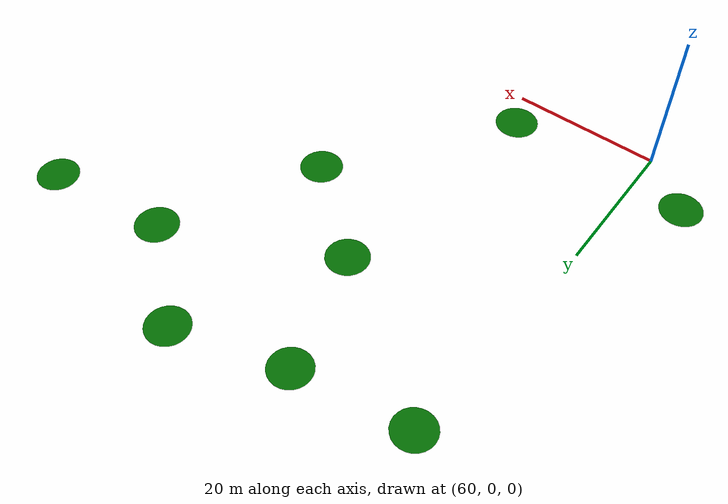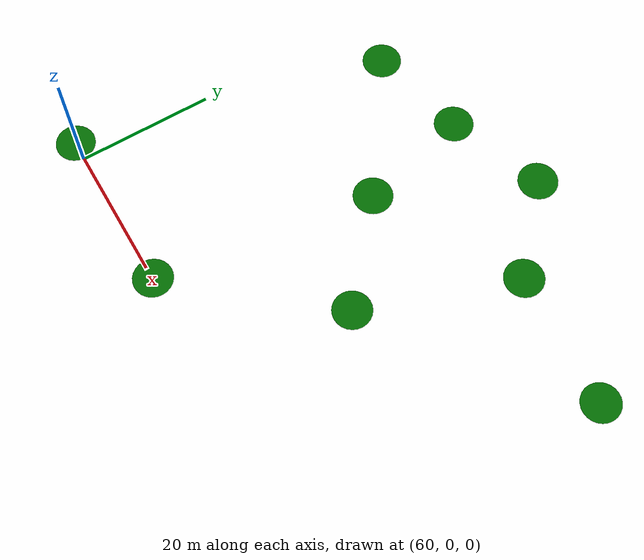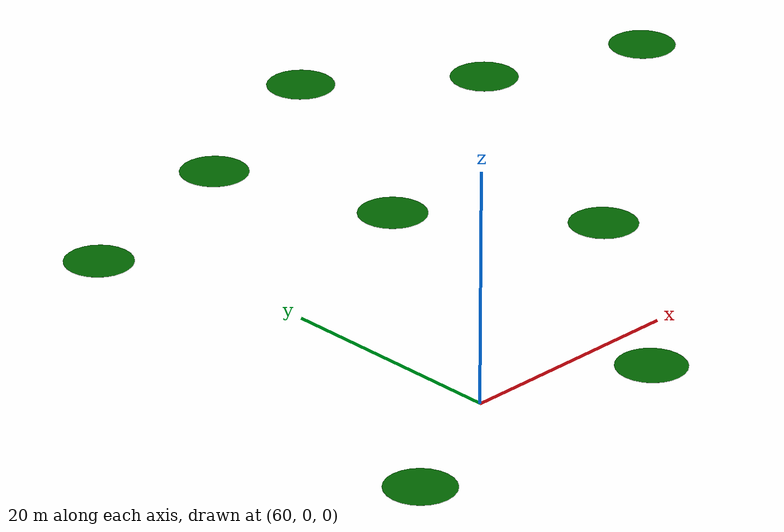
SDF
<sdf version="1.6">
 <world name="default">
  <model name="ground_plane">
   <static>1</static>
   <link name="link">
    <collision name="collision">
     <geometry><plane><normal>0 0 1</normal><size>100 100</size></plane></geometry>
     <surface><friction><ode><mu>100</mu><mu2>50</mu2></ode></friction></surface>
    </collision>
    <visual name="visual">
     <cast_shadows>0</cast_shadows>
     <geometry><plane><normal>0 0 1</normal><size>100 100</size></plane></geometry>
     <material>
      <script><uri>file://media/materials/scripts/gazebo.material</uri><name>Gazebo/Grey</name></script>
     </material>
    </visual>
   </link>
  </model>
  <model name="M16APM_point">
   <link name="link">
    <inertial>
     <mass>1</mass>
     <inertia><ixx>0.145833</ixx><ixy>0</ixy><ixz>0</ixz><iyy>0.145833</iyy><iyz>0</iyz><izz>0.125</izz></inertia>
    </inertial>
    <gravity>0</gravity>
    <visual name="ModelPreview_1::link::visual_1">
     <geometry><cylinder><radius>3</radius><length>0.01</length></cylinder></geometry>
     <material>
      <script><name>Gazebo/Grey</name><uri>file://media/materials/scripts/gazebo.material</uri></script>
      <ambient>0 0.4 0 0</ambient>
      <diffuse>0 0.4 0 0</diffuse>
      <specular>0 0.41 0 0</specular>
      <emissive>0 0.4 0 0</emissive>
      <shader type="vertex"><normal_map>__default__</normal_map></shader>
     </material>
    </visual>
    <visual name="visual">
     <geometry><cylinder><radius>3</radius><length>0.005</length></cylinder></geometry>
     <material>
      <script><name>Gazebo/Grey</name><uri>file://media/materials/scripts/gazebo.material</uri></script>
      <ambient>0 0.4 0 0</ambient>
      <diffuse>0 0.4 0 0</diffuse>
      <specular>0 0.41 0 0</specular>
      <emissive>0 0.4 0 0</emissive>
      <shader type="vertex"><normal_map>__default__</normal_map></shader>
     </material>
    </visual>
   </link>
   <static>0</static>
   <pose>54 0.5 -5.2279 0 -0 0</pose>
  </model>
  <model name="M16APM_point_clone_clone_clone">
   <link name="link">
    <inertial>
     <mass>1</mass>
     <inertia><ixx>0.145833</ixx><ixy>0</ixy><ixz>0</ixz><iyy>0.145833</iyy><iyz>0</iyz><izz>0.125</izz></inertia>
    </inertial>
    <gravity>0</gravity>
    <visual name="ModelPreview_1::link::visual_1">
     <geometry><cylinder><radius>3</radius><length>0.01</length></cylinder></geometry>
     <material>
      <script><name>Gazebo/Grey</name><uri>file://media/materials/scripts/gazebo.material</uri></script>
      <ambient>0 0.4 0 0</ambient>
      <diffuse>0 0.4 0 0</diffuse>
      <specular>0 0.41 0 0</specular>
      <emissive>0 0.4 0 0</emissive>
      <shader type="vertex"><normal_map>__default__</normal_map></shader>
     </material>
    </visual>
    <visual name="visual">
     <geometry><cylinder><radius>3</radius><length>0.005</length></cylinder></geometry>
     <material>
      <script><name>Gazebo/Grey</name><uri>file://media/materials/scripts/gazebo.material</uri></script>
      <ambient>0 0.4 0 0</ambient>
      <diffuse>0 0.4 0 0</diffuse>
      <specular>0 0.41 0 0</specular>
      <emissive>0 0.4 0 0</emissive>
      <shader type="vertex"><normal_map>__default__</normal_map></shader>
     </material>
    </visual>
   </link>
   <static>0</static>
   <pose>127 46 -6.5373 0 -0 0</pose>
  </model>
  <model name="M16APM_point_clone_0_clone">
   <link name="link">
    <inertial>
     <mass>1</mass>
     <inertia><ixx>0.145833</ixx><ixy>0</ixy><ixz>0</ixz><iyy>0.145833</iyy><iyz>0</iyz><izz>0.125</izz></inertia>
    </inertial>
    <gravity>0</gravity>
    <visual name="ModelPreview_1::link::visual_1">
     <geometry><cylinder><radius>3</radius><length>0.01</length></cylinder></geometry>
     <material>
      <script><name>Gazebo/Grey</name><uri>file://media/materials/scripts/gazebo.material</uri></script>
      <ambient>0 0.4 0 0</ambient>
      <diffuse>0 0.4 0 0</diffuse>
      <specular>0 0.41 0 0</specular>
      <emissive>0 0.4 0 0</emissive>
      <shader type="vertex"><normal_map>__default__</normal_map></shader>
     </material>
    </visual>
    <visual name="visual">
     <geometry><cylinder><radius>3</radius><length>0.005</length></cylinder></geometry>
     <material>
      <script><name>Gazebo/Grey</name><uri>file://media/materials/scripts/gazebo.material</uri></script>
      <ambient>0 0.4 0 0</ambient>
      <diffuse>0 0.4 0 0</diffuse>
      <specular>0 0.41 0 0</specular>
      <emissive>0 0.4 0 0</emissive>
      <shader type="vertex"><normal_map>__default__</normal_map></shader>
     </material>
    </visual>
   </link>
   <static>0</static>
   <pose>107 46 -3.071 0 -0 0</pose>
  </model>
  <model name="M16APM_point_clone_0_clone_clone_clone">
   <link name="link">
    <inertial>
     <mass>1</mass>
     <inertia><ixx>0.145833</ixx><ixy>0</ixy><ixz>0</ixz><iyy>0.145833</iyy><iyz>0</iyz><izz>0.125</izz></inertia>
    </inertial>
    <gravity>0</gravity>
    <visual name="ModelPreview_1::link::visual_1">
     <geometry><cylinder><radius>3</radius><length>0.01</length></cylinder></geometry>
     <material>
      <script><name>Gazebo/Grey</name><uri>file://media/materials/scripts/gazebo.material</uri></script>
      <ambient>0 0.4 0 0</ambient>
      <diffuse>0 0.4 0 0</diffuse>
      <specular>0 0.41 0 0</specular>
      <emissive>0 0.4 0 0</emissive>
      <shader type="vertex"><normal_map>__default__</normal_map></shader>
     </material>
    </visual>
    <visual name="visual">
     <geometry><cylinder><radius>3</radius><length>0.005</length></cylinder></geometry>
     <material>
      <script><name>Gazebo/Grey</name><uri>file://media/materials/scripts/gazebo.material</uri></script>
      <ambient>0 0.4 0 0</ambient>
      <diffuse>0 0.4 0 0</diffuse>
      <specular>0 0.41 0 0</specular>
      <emissive>0 0.4 0 0</emissive>
      <shader type="vertex"><normal_map>__default__</normal_map></shader>
     </material>
    </visual>
   </link>
   <static>0</static>
   <pose>64 48.5 -6.6215 0 -0 0</pose>
  </model>
  <model name="M16APM_point_clone_0_clone_clone_clone_clone_clone">
   <link name="link">
    <inertial>
     <mass>1</mass>
     <inertia><ixx>0.145833</ixx><ixy>0</ixy><ixz>0</ixz><iyy>0.145833</iyy><iyz>0</iyz><izz>0.125</izz></inertia>
    </inertial>
    <gravity>0</gravity>
    <visual name="ModelPreview_1::link::visual_1">
     <geometry><cylinder><radius>3</radius><length>0.01</length></cylinder></geometry>
     <material>
      <script><name>Gazebo/Grey</name><uri>file://media/materials/scripts/gazebo.material</uri></script>
      <ambient>0 0.4 0 0</ambient>
      <diffuse>0 0.4 0 0</diffuse>
      <specular>0 0.41 0 0</specular>
      <emissive>0 0.4 0 0</emissive>
      <shader type="vertex"><normal_map>__default__</normal_map></shader>
     </material>
    </visual>
    <visual name="visual">
     <geometry><cylinder><radius>3</radius><length>0.005</length></cylinder></geometry>
     <material>
      <script><name>Gazebo/Grey</name><uri>file://media/materials/scripts/gazebo.material</uri></script>
      <ambient>0 0.4 0 0</ambient>
      <diffuse>0 0.4 0 0</diffuse>
      <specular>0 0.41 0 0</specular>
      <emissive>0 0.4 0 0</emissive>
      <shader type="vertex"><normal_map>__default__</normal_map></shader>
     </material>
    </visual>
   </link>
   <static>0</static>
   <pose>84.5 34.5 -4.3199 0 -0 0</pose>
  </model>
  <model name="M16APM_point_clone_0_clone_clone_clone_clone_clone_clone_clone_0">
   <link name="link">
    <inertial>
     <mass>1</mass>
     <inertia><ixx>0.145833</ixx><ixy>0</ixy><ixz>0</ixz><iyy>0.145833</iyy><iyz>0</iyz><izz>0.125</izz></inertia>
    </inertial>
    <gravity>0</gravity>
    <visual name="ModelPreview_1::link::visual_1">
     <geometry><cylinder><radius>3</radius><length>0.01</length></cylinder></geometry>
     <material>
      <script><name>Gazebo/Grey</name><uri>file://media/materials/scripts/gazebo.material</uri></script>
      <ambient>0 0.4 0 0</ambient>
      <diffuse>0 0.4 0 0</diffuse>
      <specular>0 0.41 0 0</specular>
      <emissive>0 0.4 0 0</emissive>
      <shader type="vertex"><normal_map>__default__</normal_map></shader>
     </material>
    </visual>
    <visual name="visual">
     <geometry><cylinder><radius>3</radius><length>0.005</length></cylinder></geometry>
     <material>
      <script><name>Gazebo/Grey</name><uri>file://media/materials/scripts/gazebo.material</uri></script>
      <ambient>0 0.4 0 0</ambient>
      <diffuse>0 0.4 0 0</diffuse>
      <specular>0 0.41 0 0</specular>
      <emissive>0 0.4 0 0</emissive>
      <shader type="vertex"><normal_map>__default__</normal_map></shader>
     </material>
    </visual>
   </link>
   <static>0</static>
   <pose>95 56.5 -3.4083 0 -0 0</pose>
  </model>
  <model name="M16APM_point_clone_0_clone_clone_clone_clone_clone_clone_clone_3">
   <link name="link">
    <inertial>
     <mass>1</mass>
     <inertia><ixx>0.145833</ixx><ixy>0</ixy><ixz>0</ixz><iyy>0.145833</iyy><iyz>0</iyz><izz>0.125</izz></inertia>
    </inertial>
    <gravity>0</gravity>
    <visual name="ModelPreview_1::link::visual_1">
     <geometry><cylinder><radius>3</radius><length>0.01</length></cylinder></geometry>
     <material>
      <script><name>Gazebo/Grey</name><uri>file://media/materials/scripts/gazebo.material</uri></script>
      <ambient>0 0.4 0 0</ambient>
      <diffuse>0 0.4 0 0</diffuse>
      <specular>0 0.41 0 0</specular>
      <emissive>0 0.4 0 0</emissive>
      <shader type="vertex"><normal_map>__default__</normal_map></shader>
     </material>
    </visual>
    <visual name="visual">
     <geometry><cylinder><radius>3</radius><length>0.005</length></cylinder></geometry>
     <material>
      <script><name>Gazebo/Grey</name><uri>file://media/materials/scripts/gazebo.material</uri></script>
      <ambient>0 0.4 0 0</ambient>
      <diffuse>0 0.4 0 0</diffuse>
      <specular>0 0.41 0 0</specular>
      <emissive>0 0.4 0 0</emissive>
      <shader type="vertex"><normal_map>__default__</normal_map></shader>
     </material>
    </visual>
   </link>
   <static>0</static>
   <pose>80 0.5 -4.2466 0 -0 0</pose>
  </model>
  <model name="M16APM_point_clone_0_clone_clone_clone_clone_clone_clone_clone_8">
   <link name="link">
    <inertial>
     <mass>1</mass>
     <inertia><ixx>0.145833</ixx><ixy>0</ixy><ixz>0</ixz><iyy>0.145833</iyy><iyz>0</iyz><izz>0.125</izz></inertia>
    </inertial>
    <gravity>0</gravity>
    <visual name="ModelPreview_1::link::visual_1">
     <geometry><cylinder><radius>3</radius><length>0.01</length></cylinder></geometry>
     <material>
      <script><name>Gazebo/Grey</name><uri>file://media/materials/scripts/gazebo.material</uri></script>
      <ambient>0 0.4 0 0</ambient>
      <diffuse>0 0.4 0 0</diffuse>
      <specular>0 0.41 0 0</specular>
      <emissive>0 0.4 0 0</emissive>
      <shader type="vertex"><normal_map>__default__</normal_map></shader>
     </material>
    </visual>
    <visual name="visual">
     <geometry><cylinder><radius>3</radius><length>0.005</length></cylinder></geometry>
     <material>
      <script><name>Gazebo/Grey</name><uri>file://media/materials/scripts/gazebo.material</uri></script>
      <ambient>0 0.4 0 0</ambient>
      <diffuse>0 0.4 0 0</diffuse>
      <specular>0 0.41 0 0</specular>
      <emissive>0 0.4 0 0</emissive>
      <shader type="vertex"><normal_map>__default__</normal_map></shader>
     </material>
    </visual>
   </link>
   <static>0</static>
   <pose>80 51.5 -4.8761 0 -0 0</pose>
  </model>
  <model name="M16APM_point_clone_0_clone_clone_clone_clone_clone_clone_clone_18">
   <link name="link">
    <inertial>
     <mass>1</mass>
     <inertia><ixx>0.145833</ixx><ixy>0</ixy><ixz>0</ixz><iyy>0.145833</iyy><iyz>0</iyz><izz>0.125</izz></inertia>
    </inertial>
    <gravity>0</gravity>
    <visual name="ModelPreview_1::link::visual_1">
     <geometry><cylinder><radius>3</radius><length>0.01</length></cylinder></geometry>
     <material>
      <script><name>Gazebo/Grey</name><uri>file://media/materials/scripts/gazebo.material</uri></script>
      <ambient>0 0.4 0 0</ambient>
      <diffuse>0 0.4 0 0</diffuse>
      <specular>0 0.41 0 0</specular>
      <emissive>0 0.4 0 0</emissive>
      <shader type="vertex"><normal_map>__default__</normal_map></shader>
     </material>
    </visual>
    <visual name="visual">
     <geometry><cylinder><radius>3</radius><length>0.005</length></cylinder></geometry>
     <material>
      <script><name>Gazebo/Grey</name><uri>file://media/materials/scripts/gazebo.material</uri></script>
      <ambient>0 0.4 0 0</ambient>
      <diffuse>0 0.4 0 0</diffuse>
      <specular>0 0.41 0 0</specular>
      <emissive>0 0.4 0 0</emissive>
      <shader type="vertex"><normal_map>__default__</normal_map></shader>
     </material>
    </visual>
   </link>
   <static>0</static>
   <pose>98 23 -5.8903 0 -0 0</pose>
  </model>
 </world>
</sdf>
